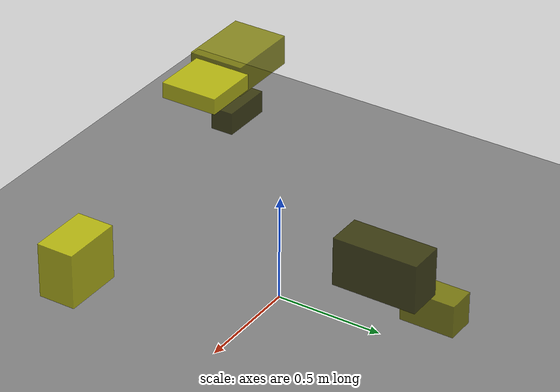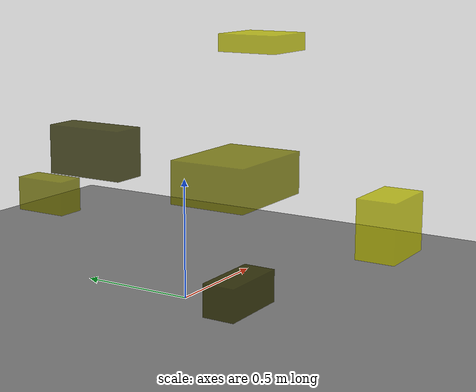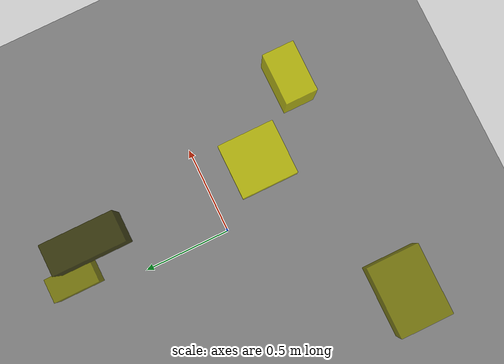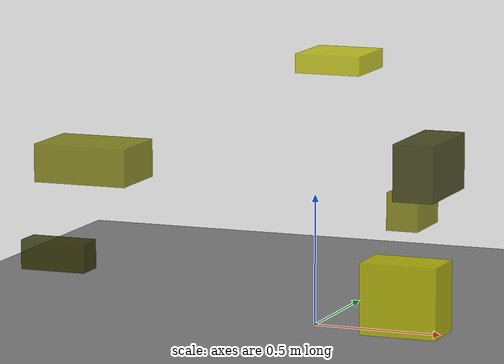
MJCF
<?xml version="1.0"?>
<mujoco model="obstacle_scene">
  <compiler angle="radian" coordinate="local"/>
  <option timestep="0.001" gravity="0 0 -9.81"/>

  <asset>
    <material name="obstacle_mat" rgba="0.8 0.8 0.0 0.8"/>
    <material name="ground_mat" rgba="0.5 0.5 0.5 1"/>
  </asset>

  <worldbody>
    <!-- Ground plane -->
    <geom name="ground" type="plane" size="3 3 0.1" material="ground_mat"/>

    <!-- Obstacles -->
    <body name="obstacle_0" pos="0.230882 0.646528 0.519770">
      <geom name="obs_0" type="box" size="0.082341 0.193193 0.112042" rgba="0.2 0.2 0.0 0.8"/>
    </body>
    <body name="obstacle_1" pos="0.106182 0.816154 0.321903">
      <geom name="obs_1" type="box" size="0.064757 0.124669 0.075436" rgba="0.5 0.5 0.0 0.8"/>
    </body>
    <body name="obstacle_2" pos="0.183772 -0.248645 1.051995">
      <geom name="obs_2" type="box" size="0.123348 0.127721 0.035180" rgba="0.8 0.8 0.0 0.8"/>
    </body>
    <body name="obstacle_3" pos="-0.738852 -0.710093 0.349737">
      <geom name="obs_3" type="box" size="0.124830 0.055317 0.054304" rgba="0.2 0.2 0.0 0.8"/>
    </body>
    <body name="obstacle_4" pos="-0.630830 -0.631280 0.692321">
      <geom name="obs_4" type="box" size="0.177724 0.131969 0.070279" rgba="0.5 0.5 0.0 0.8"/>
    </body>
    <body name="obstacle_5" pos="0.582762 -0.644103 0.273748">
      <geom name="obs_5" type="box" size="0.143419 0.088420 0.130425" rgba="0.8 0.8 0.0 0.8"/>
    </body>
  </worldbody>
</mujoco>
